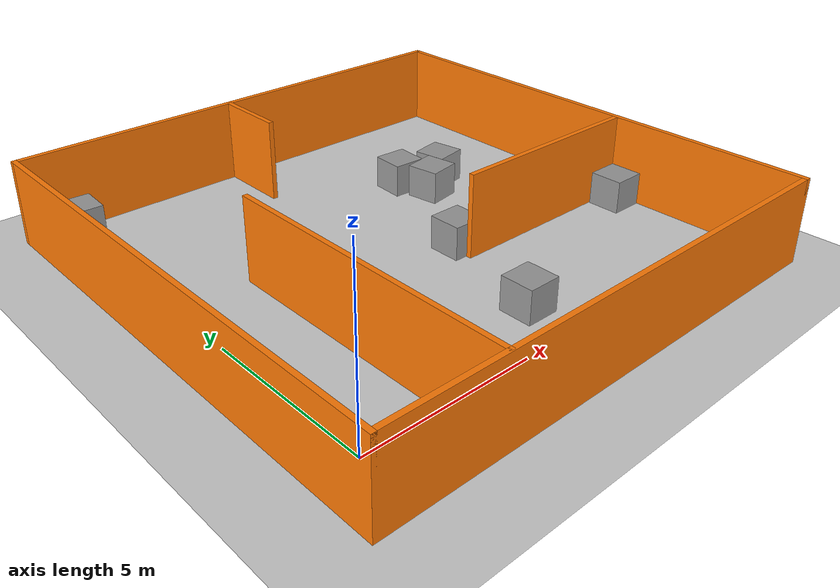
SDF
<sdf version="1.7">
 <world name="default">
  <light name="sun" type="directional">
   <pose>0 0 10 0 -0 0</pose>
   <diffuse>0.8 0.8 0.8 1</diffuse>
   <specular>0.2 0.2 0.2 1</specular>
   <attenuation>
    <range>1000</range>
    <constant>0.9</constant>
    <linear>0.01</linear>
    <quadratic>0.001</quadratic>
   </attenuation>
   <direction>-0.5 0.1 -0.9</direction>
   <spot><inner_angle>0</inner_angle><outer_angle>0</outer_angle><falloff>0</falloff></spot>
  </light>
  <model name="ground_plane">
   <static>1</static>
   <link name="link">
    <collision name="collision">
     <geometry><plane><normal>0 0 1</normal><size>100 100</size></plane></geometry>
     <surface>
      <contact><collide_bitmask>65535</collide_bitmask></contact>
      <friction><ode><mu>100</mu><mu2>50</mu2></ode></friction>
     </surface>
    </collision>
    <visual name="visual">
     <cast_shadows>0</cast_shadows>
     <geometry><plane><normal>0 0 1</normal><size>100 100</size></plane></geometry>
     <material>
      <script><uri>file://media/materials/scripts/gazebo.material</uri><name>Gazebo/Grey</name></script>
     </material>
    </visual>
   </link>
  </model>
  <gravity>0 0 -9.8</gravity>
  <magnetic_field>6e-06 2.3e-05 -4.2e-05</magnetic_field>
  <atmosphere type="adiabatic"/>
  <physics type="ode">
   <max_step_size>0.001</max_step_size>
   <real_time_factor>1</real_time_factor>
   <real_time_update_rate>1000</real_time_update_rate>
  </physics>
  <scene><ambient>0.4 0.4 0.4 1</ambient><background>0.7 0.7 0.7 1</background><shadows>1</shadows></scene>
  <audio><device>default</device></audio>
  <spherical_coordinates>
   <surface_model>EARTH_WGS84</surface_model>
   <latitude_deg>0</latitude_deg>
   <longitude_deg>0</longitude_deg>
   <elevation>0</elevation>
   <heading_deg>0</heading_deg>
  </spherical_coordinates>
  <model name="Untitled">
   <pose>6.22572 5.6077 0 0 -0 0</pose>
   <link name="Wall_0">
    <collision name="Wall_0_Collision">
     <geometry><box><size>15 0.15 2.5</size></box></geometry>
     <pose>0 0 1.25 0 -0 0</pose>
    </collision>
    <visual name="Wall_0_Visual">
     <pose>0 0 1.25 0 -0 0</pose>
     <geometry><box><size>15 0.15 2.5</size></box></geometry>
     <material>
      <script><uri>file://media/materials/scripts/gazebo.material</uri><name>Gazebo/Grey</name></script>
      <ambient>0.996078 0.47451 0.0196078 1</ambient>
     </material>
     <meta><layer>0</layer></meta>
    </visual>
    <pose>-7.425 0 0 0 -0 -1.5708</pose>
   </link>
   <link name="Wall_12">
    <collision name="Wall_12_Collision">
     <geometry><box><size>2.25 0.15 2.5</size></box></geometry>
     <pose>0 0 1.25 0 -0 0</pose>
    </collision>
    <visual name="Wall_12_Visual">
     <pose>0 0 1.25 0 -0 0</pose>
     <geometry><box><size>2.25 0.15 2.5</size></box></geometry>
     <material>
      <script><uri>file://media/materials/scripts/gazebo.material</uri><name>Gazebo/Grey</name></script>
      <ambient>0.996078 0.47451 0.0196078 1</ambient>
     </material>
     <meta><layer>0</layer></meta>
    </visual>
    <pose>-0.626689 6.28375 0 0 -0 -1.5708</pose>
   </link>
   <link name="Wall_14">
    <collision name="Wall_14_Collision">
     <geometry><box><size>6.25 0.15 2.5</size></box></geometry>
     <pose>0 0 1.25 0 -0 0</pose>
    </collision>
    <visual name="Wall_14_Visual">
     <pose>0 0 1.25 0 -0 0</pose>
     <geometry><box><size>6.25 0.15 2.5</size></box></geometry>
     <material>
      <script><uri>file://media/materials/scripts/gazebo.material</uri><name>Gazebo/Grey</name></script>
      <ambient>0.996078 0.47451 0.0196078 1</ambient>
     </material>
     <meta><layer>0</layer></meta>
    </visual>
    <pose>4.26228 -1.42649 0 0 -0 3.14159</pose>
   </link>
   <link name="Wall_2">
    <collision name="Wall_2_Collision">
     <geometry><box><size>15 0.15 2.5</size></box></geometry>
     <pose>0 0 1.25 0 -0 0</pose>
    </collision>
    <visual name="Wall_2_Visual">
     <pose>0 0 1.25 0 -0 0</pose>
     <geometry><box><size>15 0.15 2.5</size></box></geometry>
     <material>
      <script><uri>file://media/materials/scripts/gazebo.material</uri><name>Gazebo/Grey</name></script>
      <ambient>0.996078 0.47451 0.0196078 1</ambient>
     </material>
     <meta><layer>0</layer></meta>
    </visual>
    <pose>-0 7.425 0 0 -0 0</pose>
   </link>
   <link name="Wall_4">
    <collision name="Wall_4_Collision">
     <geometry><box><size>15 0.15 2.5</size></box></geometry>
     <pose>0 0 1.25 0 -0 0</pose>
    </collision>
    <visual name="Wall_4_Visual">
     <pose>0 0 1.25 0 -0 0</pose>
     <geometry><box><size>15 0.15 2.5</size></box></geometry>
     <material>
      <script><uri>file://media/materials/scripts/gazebo.material</uri><name>Gazebo/Grey</name></script>
      <ambient>0.996078 0.47451 0.0196078 1</ambient>
     </material>
     <meta><layer>0</layer></meta>
    </visual>
    <pose>7.425 0 0 0 -0 -1.5708</pose>
   </link>
   <link name="Wall_6">
    <collision name="Wall_6_Collision">
     <geometry><box><size>15 0.15 2.5</size></box></geometry>
     <pose>0 0 1.25 0 -0 0</pose>
    </collision>
    <visual name="Wall_6_Visual">
     <pose>0 0 1.25 0 -0 0</pose>
     <geometry><box><size>15 0.15 2.5</size></box></geometry>
     <material>
      <script><uri>file://media/materials/scripts/gazebo.material</uri><name>Gazebo/Grey</name></script>
      <ambient>0.996078 0.47451 0.0196078 1</ambient>
     </material>
     <meta><layer>0</layer></meta>
    </visual>
    <pose>-0 -7.425 0 0 -0 0</pose>
   </link>
   <link name="Wall_8">
    <collision name="Wall_8_Collision">
     <geometry><box><size>9 0.15 2.5</size></box></geometry>
     <pose>0 0 1.25 0 -0 0</pose>
    </collision>
    <visual name="Wall_8_Visual">
     <pose>0 0 1.25 0 -0 0</pose>
     <geometry><box><size>9 0.15 2.5</size></box></geometry>
     <material>
      <script><uri>file://media/materials/scripts/gazebo.material</uri><name>Gazebo/Grey</name></script>
      <ambient>0.996078 0.47451 0.0196078 1</ambient>
     </material>
     <meta><layer>0</layer></meta>
    </visual>
    <pose>-3.95741 -2.96805 0 0 -0 1.5708</pose>
   </link>
   <static>1</static>
  </model>
  <model name="unit_box">
   <pose>2.8433 5.79999 0.5 0 -0 0</pose>
   <link name="link">
    <inertial>
     <mass>1</mass>
     <inertia>
      <ixx>0.166667</ixx>
      <ixy>0</ixy>
      <ixz>0</ixz>
      <iyy>0.166667</iyy>
      <iyz>0</iyz>
      <izz>0.166667</izz>
     </inertia>
    </inertial>
    <collision name="collision"><geometry><box><size>1 1 1</size></box></geometry></collision>
    <visual name="visual">
     <geometry><box><size>1 1 1</size></box></geometry>
     <material>
      <script><name>Gazebo/Grey</name><uri>file://media/materials/scripts/gazebo.material</uri></script>
     </material>
    </visual>
   </link>
  </model>
  <model name="unit_box_0">
   <pose>-0.583927 11.4686 0.5 0 0 -0.069386</pose>
   <link name="link">
    <inertial>
     <mass>1</mass>
     <inertia>
      <ixx>0.166667</ixx>
      <ixy>0</ixy>
      <ixz>0</ixz>
      <iyy>0.166667</iyy>
      <iyz>0</iyz>
      <izz>0.166667</izz>
     </inertia>
    </inertial>
    <collision name="collision"><geometry><box><size>1 1 1</size></box></geometry></collision>
    <visual name="visual">
     <geometry><box><size>1 1 1</size></box></geometry>
     <material>
      <script><name>Gazebo/Grey</name><uri>file://media/materials/scripts/gazebo.material</uri></script>
     </material>
    </visual>
   </link>
  </model>
  <model name="unit_box_1">
   <pose>0.113742 12.4352 0.499995 1e-05 0 -0.043994</pose>
   <link name="link">
    <inertial>
     <mass>1</mass>
     <inertia>
      <ixx>0.166667</ixx>
      <ixy>0</ixy>
      <ixz>0</ixz>
      <iyy>0.166667</iyy>
      <iyz>0</iyz>
      <izz>0.166667</izz>
     </inertia>
    </inertial>
    <collision name="collision"><geometry><box><size>1 1 1</size></box></geometry></collision>
    <visual name="visual">
     <geometry><box><size>1 1 1</size></box></geometry>
     <material>
      <script><name>Gazebo/Grey</name><uri>file://media/materials/scripts/gazebo.material</uri></script>
     </material>
    </visual>
   </link>
  </model>
  <model name="unit_box_2">
   <pose>10.2883 8.41712 0.499996 0 9e-06 0.173065</pose>
   <link name="link">
    <inertial>
     <mass>1</mass>
     <inertia>
      <ixx>0.166667</ixx>
      <ixy>0</ixy>
      <ixz>0</ixz>
      <iyy>0.166667</iyy>
      <iyz>0</iyz>
      <izz>0.166667</izz>
     </inertia>
    </inertial>
    <collision name="collision"><geometry><box><size>1 1 1</size></box></geometry></collision>
    <visual name="visual">
     <geometry><box><size>1 1 1</size></box></geometry>
     <material>
      <script><name>Gazebo/Grey</name><uri>file://media/materials/scripts/gazebo.material</uri></script>
     </material>
    </visual>
   </link>
  </model>
  <model name="unit_box_3">
   <pose>8.98702 8.81104 0.499995 0 1e-05 -0.054709</pose>
   <link name="link">
    <inertial>
     <mass>1</mass>
     <inertia>
      <ixx>0.166667</ixx>
      <ixy>0</ixy>
      <ixz>0</ixz>
      <iyy>0.166667</iyy>
      <iyz>0</iyz>
      <izz>0.166667</izz>
     </inertia>
    </inertial>
    <collision name="collision"><geometry><box><size>1 1 1</size></box></geometry></collision>
    <visual name="visual">
     <geometry><box><size>1 1 1</size></box></geometry>
     <material>
      <script><name>Gazebo/Grey</name><uri>file://media/materials/scripts/gazebo.material</uri></script>
     </material>
    </visual>
   </link>
  </model>
  <model name="unit_box_4">
   <pose>9.38189 7.76389 0.499996 0 9e-06 0.170001</pose>
   <link name="link">
    <inertial>
     <mass>1</mass>
     <inertia>
      <ixx>0.166667</ixx>
      <ixy>0</ixy>
      <ixz>0</ixz>
      <iyy>0.166667</iyy>
      <iyz>0</iyz>
      <izz>0.166667</izz>
     </inertia>
    </inertial>
    <collision name="collision"><geometry><box><size>1 1 1</size></box></geometry></collision>
    <visual name="visual">
     <geometry><box><size>1 1 1</size></box></geometry>
     <material>
      <script><name>Gazebo/Grey</name><uri>file://media/materials/scripts/gazebo.material</uri></script>
     </material>
    </visual>
   </link>
  </model>
  <model name="unit_box_5">
   <pose>13.0478 3.58225 0.499995 0 1e-05 0</pose>
   <link name="link">
    <inertial>
     <mass>1</mass>
     <inertia>
      <ixx>0.166667</ixx>
      <ixy>0</ixy>
      <ixz>0</ixz>
      <iyy>0.166667</iyy>
      <iyz>0</iyz>
      <izz>0.166667</izz>
     </inertia>
    </inertial>
    <collision name="collision"><geometry><box><size>1 1 1</size></box></geometry></collision>
    <visual name="visual">
     <geometry><box><size>1 1 1</size></box></geometry>
     <material>
      <script><name>Gazebo/Grey</name><uri>file://media/materials/scripts/gazebo.material</uri></script>
     </material>
    </visual>
   </link>
  </model>
  <model name="unit_box_6">
   <pose>1.64598 -1.23162 0.499995 -1e-05 -0 -0</pose>
   <link name="link">
    <inertial>
     <mass>1</mass>
     <inertia>
      <ixx>0.166667</ixx>
      <ixy>0</ixy>
      <ixz>0</ixz>
      <iyy>0.166667</iyy>
      <iyz>0</iyz>
      <izz>0.166667</izz>
     </inertia>
    </inertial>
    <collision name="collision"><geometry><box><size>1 1 1</size></box></geometry></collision>
    <visual name="visual">
     <geometry><box><size>1 1 1</size></box></geometry>
     <material>
      <script><name>Gazebo/Grey</name><uri>file://media/materials/scripts/gazebo.material</uri></script>
     </material>
    </visual>
   </link>
  </model>
  <model name="unit_box_7">
   <pose>7.47882 4.76975 0.499995 0 1e-05 0</pose>
   <link name="link">
    <inertial>
     <mass>1</mass>
     <inertia>
      <ixx>0.166667</ixx>
      <ixy>0</ixy>
      <ixz>0</ixz>
      <iyy>0.166667</iyy>
      <iyz>0</iyz>
      <izz>0.166667</izz>
     </inertia>
    </inertial>
    <collision name="collision"><geometry><box><size>1 1 1</size></box></geometry></collision>
    <visual name="visual">
     <geometry><box><size>1 1 1</size></box></geometry>
     <material>
      <script><name>Gazebo/Grey</name><uri>file://media/materials/scripts/gazebo.material</uri></script>
     </material>
    </visual>
   </link>
  </model>
  <model name="unit_box_8">
   <pose>6.54244 1.32876 0.499995 -1e-05 -0 0</pose>
   <link name="link">
    <inertial>
     <mass>1</mass>
     <inertia>
      <ixx>0.166667</ixx>
      <ixy>0</ixy>
      <ixz>0</ixz>
      <iyy>0.166667</iyy>
      <iyz>0</iyz>
      <izz>0.166667</izz>
     </inertia>
    </inertial>
    <collision name="collision"><geometry><box><size>1 1 1</size></box></geometry></collision>
    <visual name="visual">
     <geometry><box><size>1 1 1</size></box></geometry>
     <material>
      <script><name>Gazebo/Grey</name><uri>file://media/materials/scripts/gazebo.material</uri></script>
     </material>
    </visual>
   </link>
  </model>
  <model name="unit_box_9">
   <pose>-0.624283 4.5017 0.499995 0 -1e-05 -5e-06</pose>
   <link name="link">
    <inertial>
     <mass>1</mass>
     <inertia>
      <ixx>0.166667</ixx>
      <ixy>0</ixy>
      <ixz>0</ixz>
      <iyy>0.166667</iyy>
      <iyz>0</iyz>
      <izz>0.166667</izz>
     </inertia>
    </inertial>
    <collision name="collision"><geometry><box><size>1 1 1</size></box></geometry></collision>
    <visual name="visual">
     <geometry><box><size>1 1 1</size></box></geometry>
     <material>
      <script><name>Gazebo/Grey</name><uri>file://media/materials/scripts/gazebo.material</uri></script>
     </material>
    </visual>
   </link>
  </model>
 </world>
</sdf>
